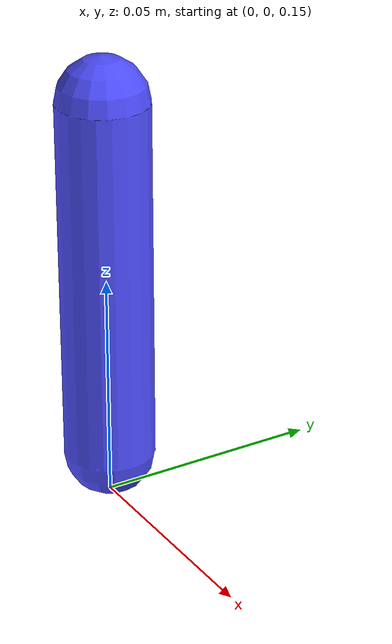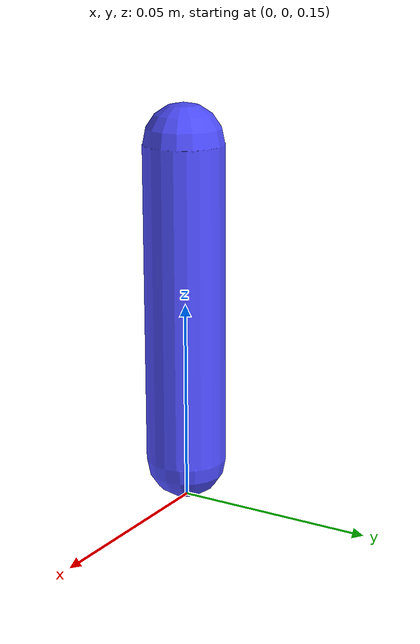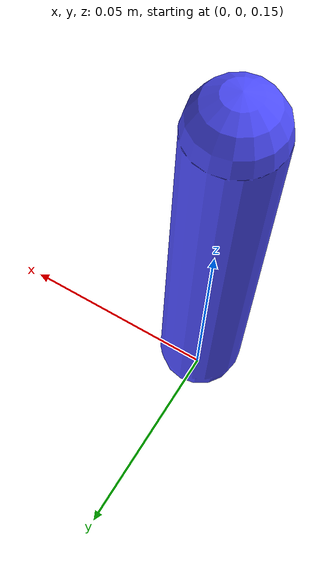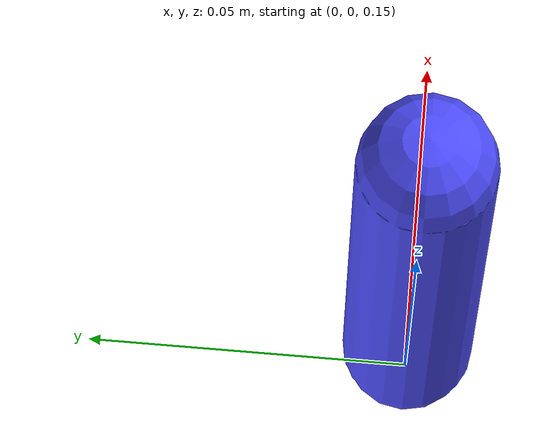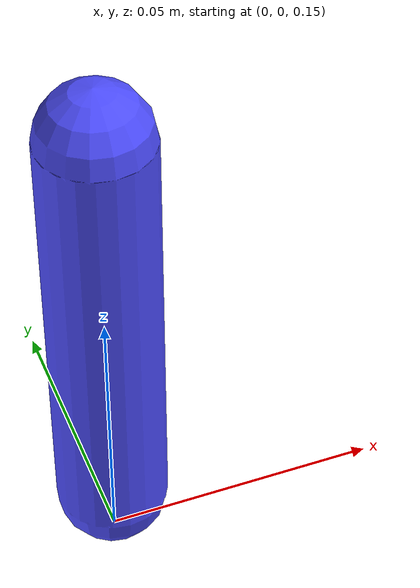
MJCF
<mujoco>
    <worldbody>
        <body name="allegro_hand" pos="0 0 0.2">
            <geom type="capsule" size="0.01 0.04" rgba="0.3 0.3 1 1"/>
            <joint name="allegro_slide" type="slide" axis="1 0 0" limited="true" range="-0.3 0.3"/>
        </body>
    </worldbody>
    <actuator>
        <motor joint="allegro_slide" gear="1"/>
    </actuator>
</mujoco>
